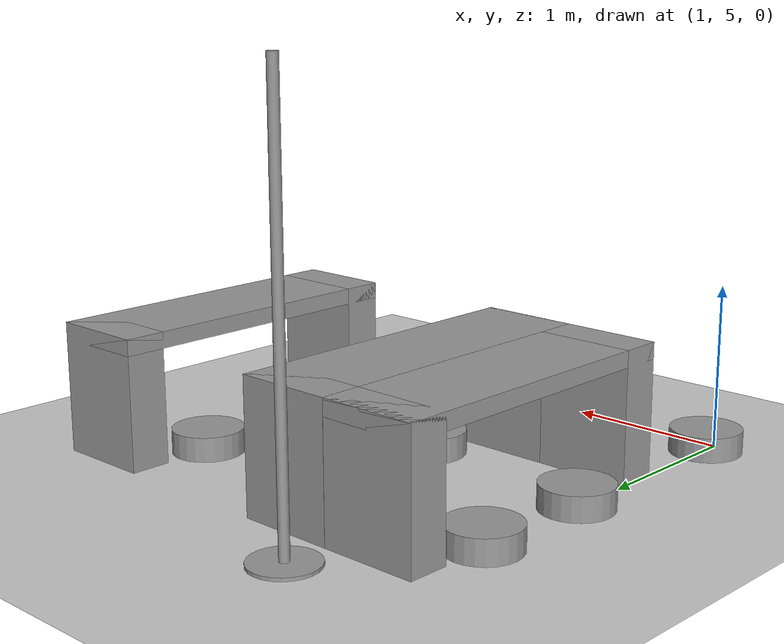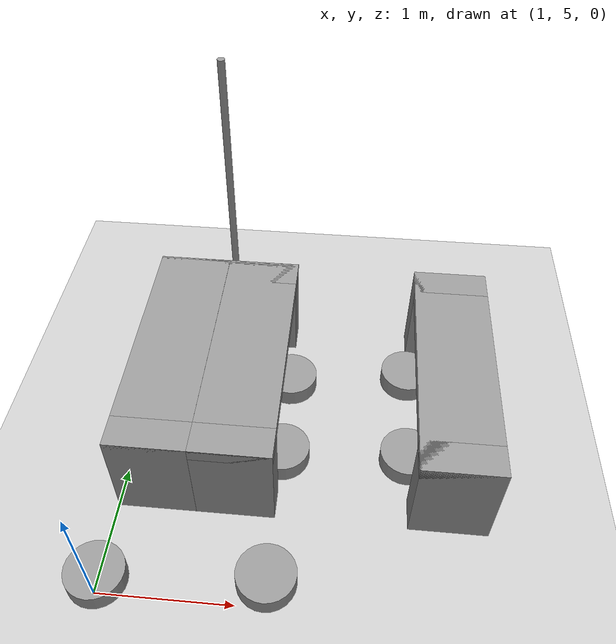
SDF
<sdf version="1.6">
 <world name="default">
  <model name="ground_plane">
   <pose>6.5 0 0 0 -0 0</pose>
   <static>1</static>
   <link name="link">
    <collision name="collision">
     <geometry><plane><normal>0 0 1</normal><size>100 100</size></plane></geometry>
     <surface>
      <contact><collide_bitmask>65535</collide_bitmask></contact>
      <friction><ode><mu>100</mu><mu2>50</mu2></ode></friction>
     </surface>
    </collision>
    <visual name="visual">
     <cast_shadows>0</cast_shadows>
     <geometry><plane><normal>0 0 1</normal><size>100 100</size></plane></geometry>
     <material>
      <script><uri>file://media/materials/scripts/gazebo.material</uri><name>Gazebo/Grey</name></script>
     </material>
    </visual>
   </link>
  </model>
  <model name="Untitled">
   <link name="link_0">
    <inertial>
     <mass>1</mass>
     <inertia><ixx>0.145833</ixx><ixy>0</ixy><ixz>0</ixz><iyy>0.145833</iyy><iyz>0</iyz><izz>0.125</izz></inertia>
    </inertial>
    <visual name="visual">
     <geometry><cylinder><radius>0.22</radius><length>0.15</length></cylinder></geometry>
     <material>
      <lighting>1</lighting>
      <script><uri>file://media/materials/scripts/gazebo.material</uri><name>Gazebo/Grey</name></script>
      <shader type="pixel"><normal_map>__default__</normal_map></shader>
      <ambient>0.3 0.3 0.3 1</ambient>
      <diffuse>0.7 0.7 0.7 1</diffuse>
      <specular>0.01 0.01 0.01 1</specular>
      <emissive>0 0 0 1</emissive>
     </material>
    </visual>
    <collision name="collision">
     <geometry><cylinder><radius>0.22</radius><length>0.15</length></cylinder></geometry>
     <surface>
      <friction>
       <ode><mu>1</mu><mu2>1</mu2><fdir1>0 0 0</fdir1><slip1>0</slip1><slip2>0</slip2></ode>
       <torsional>
        <coefficient>1</coefficient>
        <patch_radius>0</patch_radius>
        <surface_radius>0</surface_radius>
        <use_patch_radius>1</use_patch_radius>
        <ode><slip>0</slip></ode>
       </torsional>
      </friction>
      <bounce><restitution_coefficient>0</restitution_coefficient><threshold>1e+06</threshold></bounce>
      <contact>
       <collide_without_contact>0</collide_without_contact>
       <collide_without_contact_bitmask>1</collide_without_contact_bitmask>
       <collide_bitmask>1</collide_bitmask>
       <ode>
        <soft_cfm>0</soft_cfm>
        <soft_erp>0.2</soft_erp>
        <kp>1e+13</kp>
        <kd>1</kd>
        <max_vel>0.01</max_vel>
        <min_depth>0</min_depth>
       </ode>
       <bullet>
        <split_impulse>1</split_impulse>
        <split_impulse_penetration_threshold>-0.01</split_impulse_penetration_threshold>
        <soft_cfm>0</soft_cfm>
        <soft_erp>0.2</soft_erp>
        <kp>1e+13</kp>
        <kd>1</kd>
       </bullet>
      </contact>
     </surface>
    </collision>
   </link>
   <static>0</static>
   <pose>3.2 7.14234 0.074993 1e-06 1e-06 0</pose>
  </model>
  <model name="Untitled_0">
   <link name="link_0">
    <inertial>
     <mass>1</mass>
     <inertia><ixx>0.145833</ixx><ixy>0</ixy><ixz>0</ixz><iyy>0.145833</iyy><iyz>0</iyz><izz>0.125</izz></inertia>
    </inertial>
    <visual name="visual">
     <geometry><cylinder><radius>0.22</radius><length>0.15</length></cylinder></geometry>
     <material>
      <lighting>1</lighting>
      <script><uri>file://media/materials/scripts/gazebo.material</uri><name>Gazebo/Grey</name></script>
      <shader type="pixel"><normal_map>__default__</normal_map></shader>
      <ambient>0.3 0.3 0.3 1</ambient>
      <diffuse>0.7 0.7 0.7 1</diffuse>
      <specular>0.01 0.01 0.01 1</specular>
      <emissive>0 0 0 1</emissive>
     </material>
    </visual>
    <collision name="collision">
     <geometry><cylinder><radius>0.22</radius><length>0.15</length></cylinder></geometry>
     <surface>
      <friction>
       <ode><mu>1</mu><mu2>1</mu2><fdir1>0 0 0</fdir1><slip1>0</slip1><slip2>0</slip2></ode>
       <torsional>
        <coefficient>1</coefficient>
        <patch_radius>0</patch_radius>
        <surface_radius>0</surface_radius>
        <use_patch_radius>1</use_patch_radius>
        <ode><slip>0</slip></ode>
       </torsional>
      </friction>
      <bounce><restitution_coefficient>0</restitution_coefficient><threshold>1e+06</threshold></bounce>
      <contact>
       <collide_without_contact>0</collide_without_contact>
       <collide_without_contact_bitmask>1</collide_without_contact_bitmask>
       <collide_bitmask>1</collide_bitmask>
       <ode>
        <soft_cfm>0</soft_cfm>
        <soft_erp>0.2</soft_erp>
        <kp>1e+13</kp>
        <kd>1</kd>
        <max_vel>0.01</max_vel>
        <min_depth>0</min_depth>
       </ode>
       <bullet>
        <split_impulse>1</split_impulse>
        <split_impulse_penetration_threshold>-0.01</split_impulse_penetration_threshold>
        <soft_cfm>0</soft_cfm>
        <soft_erp>0.2</soft_erp>
        <kp>1e+13</kp>
        <kd>1</kd>
       </bullet>
      </contact>
     </surface>
    </collision>
   </link>
   <static>0</static>
   <pose>3.2 6.3 0.074999 0 -0 0</pose>
  </model>
  <model name="Untitled_1">
   <link name="link_0">
    <inertial>
     <mass>1</mass>
     <inertia><ixx>0.145833</ixx><ixy>0</ixy><ixz>0</ixz><iyy>0.145833</iyy><iyz>0</iyz><izz>0.125</izz></inertia>
    </inertial>
    <visual name="visual">
     <geometry><cylinder><radius>0.22</radius><length>0.15</length></cylinder></geometry>
     <material>
      <lighting>1</lighting>
      <script><uri>file://media/materials/scripts/gazebo.material</uri><name>Gazebo/Grey</name></script>
      <shader type="pixel"><normal_map>__default__</normal_map></shader>
      <ambient>0.3 0.3 0.3 1</ambient>
      <diffuse>0.7 0.7 0.7 1</diffuse>
      <specular>0.01 0.01 0.01 1</specular>
      <emissive>0 0 0 1</emissive>
     </material>
    </visual>
    <collision name="collision">
     <geometry><cylinder><radius>0.22</radius><length>0.15</length></cylinder></geometry>
     <surface>
      <friction>
       <ode><mu>1</mu><mu2>1</mu2><fdir1>0 0 0</fdir1><slip1>0</slip1><slip2>0</slip2></ode>
       <torsional>
        <coefficient>1</coefficient>
        <patch_radius>0</patch_radius>
        <surface_radius>0</surface_radius>
        <use_patch_radius>1</use_patch_radius>
        <ode><slip>0</slip></ode>
       </torsional>
      </friction>
      <bounce><restitution_coefficient>0</restitution_coefficient><threshold>1e+06</threshold></bounce>
      <contact>
       <collide_without_contact>0</collide_without_contact>
       <collide_without_contact_bitmask>1</collide_without_contact_bitmask>
       <collide_bitmask>1</collide_bitmask>
       <ode>
        <soft_cfm>0</soft_cfm>
        <soft_erp>0.2</soft_erp>
        <kp>1e+13</kp>
        <kd>1</kd>
        <max_vel>0.01</max_vel>
        <min_depth>0</min_depth>
       </ode>
       <bullet>
        <split_impulse>1</split_impulse>
        <split_impulse_penetration_threshold>-0.01</split_impulse_penetration_threshold>
        <soft_cfm>0</soft_cfm>
        <soft_erp>0.2</soft_erp>
        <kp>1e+13</kp>
        <kd>1</kd>
       </bullet>
      </contact>
     </surface>
    </collision>
   </link>
   <static>0</static>
   <pose>2.2 6.25385 0.074997 -1e-06 -1e-06 0</pose>
  </model>
  <model name="Untitled_2">
   <link name="link_0">
    <inertial>
     <mass>1</mass>
     <inertia><ixx>0.145833</ixx><ixy>0</ixy><ixz>0</ixz><iyy>0.145833</iyy><iyz>0</iyz><izz>0.125</izz></inertia>
    </inertial>
    <visual name="visual">
     <geometry><cylinder><radius>0.22</radius><length>0.15</length></cylinder></geometry>
     <material>
      <lighting>1</lighting>
      <script><uri>file://media/materials/scripts/gazebo.material</uri><name>Gazebo/Grey</name></script>
      <shader type="pixel"><normal_map>__default__</normal_map></shader>
      <ambient>0.3 0.3 0.3 1</ambient>
      <diffuse>0.7 0.7 0.7 1</diffuse>
      <specular>0.01 0.01 0.01 1</specular>
      <emissive>0 0 0 1</emissive>
     </material>
    </visual>
    <collision name="collision">
     <geometry><cylinder><radius>0.22</radius><length>0.15</length></cylinder></geometry>
     <surface>
      <friction>
       <ode><mu>1</mu><mu2>1</mu2><fdir1>0 0 0</fdir1><slip1>0</slip1><slip2>0</slip2></ode>
       <torsional>
        <coefficient>1</coefficient>
        <patch_radius>0</patch_radius>
        <surface_radius>0</surface_radius>
        <use_patch_radius>1</use_patch_radius>
        <ode><slip>0</slip></ode>
       </torsional>
      </friction>
      <bounce><restitution_coefficient>0</restitution_coefficient><threshold>1e+06</threshold></bounce>
      <contact>
       <collide_without_contact>0</collide_without_contact>
       <collide_without_contact_bitmask>1</collide_without_contact_bitmask>
       <collide_bitmask>1</collide_bitmask>
       <ode>
        <soft_cfm>0</soft_cfm>
        <soft_erp>0.2</soft_erp>
        <kp>1e+13</kp>
        <kd>1</kd>
        <max_vel>0.01</max_vel>
        <min_depth>0</min_depth>
       </ode>
       <bullet>
        <split_impulse>1</split_impulse>
        <split_impulse_penetration_threshold>-0.01</split_impulse_penetration_threshold>
        <soft_cfm>0</soft_cfm>
        <soft_erp>0.2</soft_erp>
        <kp>1e+13</kp>
        <kd>1</kd>
       </bullet>
      </contact>
     </surface>
    </collision>
   </link>
   <static>0</static>
   <pose>2.2 7.01261 0.074999 0 -0 0</pose>
  </model>
  <model name="Untitled_3">
   <link name="link_0">
    <inertial>
     <mass>1</mass>
     <inertia><ixx>0.145833</ixx><ixy>0</ixy><ixz>0</ixz><iyy>0.145833</iyy><iyz>0</iyz><izz>0.125</izz></inertia>
    </inertial>
    <visual name="visual">
     <geometry><cylinder><radius>0.22</radius><length>0.15</length></cylinder></geometry>
     <material>
      <lighting>1</lighting>
      <script><uri>file://media/materials/scripts/gazebo.material</uri><name>Gazebo/Grey</name></script>
      <shader type="pixel"><normal_map>__default__</normal_map></shader>
      <ambient>0.3 0.3 0.3 1</ambient>
      <diffuse>0.7 0.7 0.7 1</diffuse>
      <specular>0.01 0.01 0.01 1</specular>
      <emissive>0 0 0 1</emissive>
     </material>
    </visual>
    <collision name="collision">
     <geometry><cylinder><radius>0.22</radius><length>0.15</length></cylinder></geometry>
     <surface>
      <friction>
       <ode><mu>1</mu><mu2>1</mu2><fdir1>0 0 0</fdir1><slip1>0</slip1><slip2>0</slip2></ode>
       <torsional>
        <coefficient>1</coefficient>
        <patch_radius>0</patch_radius>
        <surface_radius>0</surface_radius>
        <use_patch_radius>1</use_patch_radius>
        <ode><slip>0</slip></ode>
       </torsional>
      </friction>
      <bounce><restitution_coefficient>0</restitution_coefficient><threshold>1e+06</threshold></bounce>
      <contact>
       <collide_without_contact>0</collide_without_contact>
       <collide_without_contact_bitmask>1</collide_without_contact_bitmask>
       <collide_bitmask>1</collide_bitmask>
       <ode>
        <soft_cfm>0</soft_cfm>
        <soft_erp>0.2</soft_erp>
        <kp>1e+13</kp>
        <kd>1</kd>
        <max_vel>0.01</max_vel>
        <min_depth>0</min_depth>
       </ode>
       <bullet>
        <split_impulse>1</split_impulse>
        <split_impulse_penetration_threshold>-0.01</split_impulse_penetration_threshold>
        <soft_cfm>0</soft_cfm>
        <soft_erp>0.2</soft_erp>
        <kp>1e+13</kp>
        <kd>1</kd>
       </bullet>
      </contact>
     </surface>
    </collision>
   </link>
   <static>0</static>
   <pose>1 7.16489 0.074999 0 -0 0</pose>
  </model>
  <model name="Untitled_4">
   <link name="link_0">
    <inertial>
     <mass>1</mass>
     <inertia><ixx>0.145833</ixx><ixy>0</ixy><ixz>0</ixz><iyy>0.145833</iyy><iyz>0</iyz><izz>0.125</izz></inertia>
    </inertial>
    <visual name="visual">
     <geometry><cylinder><radius>0.22</radius><length>0.15</length></cylinder></geometry>
     <material>
      <lighting>1</lighting>
      <script><uri>file://media/materials/scripts/gazebo.material</uri><name>Gazebo/Grey</name></script>
      <shader type="pixel"><normal_map>__default__</normal_map></shader>
      <ambient>0.3 0.3 0.3 1</ambient>
      <diffuse>0.7 0.7 0.7 1</diffuse>
      <specular>0.01 0.01 0.01 1</specular>
      <emissive>0 0 0 1</emissive>
     </material>
    </visual>
    <collision name="collision">
     <geometry><cylinder><radius>0.22</radius><length>0.15</length></cylinder></geometry>
     <surface>
      <friction>
       <ode><mu>1</mu><mu2>1</mu2><fdir1>0 0 0</fdir1><slip1>0</slip1><slip2>0</slip2></ode>
       <torsional>
        <coefficient>1</coefficient>
        <patch_radius>0</patch_radius>
        <surface_radius>0</surface_radius>
        <use_patch_radius>1</use_patch_radius>
        <ode><slip>0</slip></ode>
       </torsional>
      </friction>
      <bounce><restitution_coefficient>0</restitution_coefficient><threshold>1e+06</threshold></bounce>
      <contact>
       <collide_without_contact>0</collide_without_contact>
       <collide_without_contact_bitmask>1</collide_without_contact_bitmask>
       <collide_bitmask>1</collide_bitmask>
       <ode>
        <soft_cfm>0</soft_cfm>
        <soft_erp>0.2</soft_erp>
        <kp>1e+13</kp>
        <kd>1</kd>
        <max_vel>0.01</max_vel>
        <min_depth>0</min_depth>
       </ode>
       <bullet>
        <split_impulse>1</split_impulse>
        <split_impulse_penetration_threshold>-0.01</split_impulse_penetration_threshold>
        <soft_cfm>0</soft_cfm>
        <soft_erp>0.2</soft_erp>
        <kp>1e+13</kp>
        <kd>1</kd>
       </bullet>
      </contact>
     </surface>
    </collision>
   </link>
   <static>0</static>
   <pose>1 6.38689 0.074993 1e-06 1e-06 0</pose>
  </model>
  <model name="Untitled_5">
   <link name="link_0">
    <inertial>
     <mass>1</mass>
     <inertia><ixx>0.145833</ixx><ixy>0</ixy><ixz>0</ixz><iyy>0.145833</iyy><iyz>0</iyz><izz>0.125</izz></inertia>
    </inertial>
    <visual name="visual">
     <geometry><cylinder><radius>0.22</radius><length>0.15</length></cylinder></geometry>
     <material>
      <lighting>1</lighting>
      <script><uri>file://media/materials/scripts/gazebo.material</uri><name>Gazebo/Grey</name></script>
      <shader type="pixel"><normal_map>__default__</normal_map></shader>
      <ambient>0.3 0.3 0.3 1</ambient>
      <diffuse>0.7 0.7 0.7 1</diffuse>
      <specular>0.01 0.01 0.01 1</specular>
      <emissive>0 0 0 1</emissive>
     </material>
    </visual>
    <collision name="collision">
     <geometry><cylinder><radius>0.22</radius><length>0.15</length></cylinder></geometry>
     <surface>
      <friction>
       <ode><mu>1</mu><mu2>1</mu2><fdir1>0 0 0</fdir1><slip1>0</slip1><slip2>0</slip2></ode>
       <torsional>
        <coefficient>1</coefficient>
        <patch_radius>0</patch_radius>
        <surface_radius>0</surface_radius>
        <use_patch_radius>1</use_patch_radius>
        <ode><slip>0</slip></ode>
       </torsional>
      </friction>
      <bounce><restitution_coefficient>0</restitution_coefficient><threshold>1e+06</threshold></bounce>
      <contact>
       <collide_without_contact>0</collide_without_contact>
       <collide_without_contact_bitmask>1</collide_without_contact_bitmask>
       <collide_bitmask>1</collide_bitmask>
       <ode>
        <soft_cfm>0</soft_cfm>
        <soft_erp>0.2</soft_erp>
        <kp>1e+13</kp>
        <kd>1</kd>
        <max_vel>0.01</max_vel>
        <min_depth>0</min_depth>
       </ode>
       <bullet>
        <split_impulse>1</split_impulse>
        <split_impulse_penetration_threshold>-0.01</split_impulse_penetration_threshold>
        <soft_cfm>0</soft_cfm>
        <soft_erp>0.2</soft_erp>
        <kp>1e+13</kp>
        <kd>1</kd>
       </bullet>
      </contact>
     </surface>
    </collision>
   </link>
   <static>0</static>
   <pose>1 5.10463 0.074993 1e-06 1e-06 0</pose>
  </model>
  <model name="Untitled_8">
   <link name="link_0">
    <inertial>
     <mass>1</mass>
     <inertia><ixx>0.145833</ixx><ixy>0</ixy><ixz>0</ixz><iyy>0.145833</iyy><iyz>0</iyz><izz>0.125</izz></inertia>
    </inertial>
    <visual name="visual">
     <geometry><cylinder><radius>0.22</radius><length>0.15</length></cylinder></geometry>
     <material>
      <lighting>1</lighting>
      <script><uri>file://media/materials/scripts/gazebo.material</uri><name>Gazebo/Grey</name></script>
      <shader type="pixel"><normal_map>__default__</normal_map></shader>
      <ambient>0.3 0.3 0.3 1</ambient>
      <diffuse>0.7 0.7 0.7 1</diffuse>
      <specular>0.01 0.01 0.01 1</specular>
      <emissive>0 0 0 1</emissive>
     </material>
    </visual>
    <collision name="collision">
     <geometry><cylinder><radius>0.22</radius><length>0.15</length></cylinder></geometry>
     <surface>
      <friction>
       <ode><mu>1</mu><mu2>1</mu2><fdir1>0 0 0</fdir1><slip1>0</slip1><slip2>0</slip2></ode>
       <torsional>
        <coefficient>1</coefficient>
        <patch_radius>0</patch_radius>
        <surface_radius>0</surface_radius>
        <use_patch_radius>1</use_patch_radius>
        <ode><slip>0</slip></ode>
       </torsional>
      </friction>
      <bounce><restitution_coefficient>0</restitution_coefficient><threshold>1e+06</threshold></bounce>
      <contact>
       <collide_without_contact>0</collide_without_contact>
       <collide_without_contact_bitmask>1</collide_without_contact_bitmask>
       <collide_bitmask>1</collide_bitmask>
       <ode>
        <soft_cfm>0</soft_cfm>
        <soft_erp>0.2</soft_erp>
        <kp>1e+13</kp>
        <kd>1</kd>
        <max_vel>0.01</max_vel>
        <min_depth>0</min_depth>
       </ode>
       <bullet>
        <split_impulse>1</split_impulse>
        <split_impulse_penetration_threshold>-0.01</split_impulse_penetration_threshold>
        <soft_cfm>0</soft_cfm>
        <soft_erp>0.2</soft_erp>
        <kp>1e+13</kp>
        <kd>1</kd>
       </bullet>
      </contact>
     </surface>
    </collision>
   </link>
   <static>0</static>
   <pose>2.2 5.19261 0.074993 1e-06 1e-06 0</pose>
  </model>
  <model name="Table_SF_0">
   <link name="link_0">
    <pose>-0 -0.875 -0.116667 0 -0 0</pose>
    <inertial>
     <mass>1</mass>
     <inertia>
      <ixx>0.166667</ixx>
      <ixy>0</ixy>
      <ixz>0</ixz>
      <iyy>0.166667</iyy>
      <iyz>0</iyz>
      <izz>0.166667</izz>
     </inertia>
    </inertial>
    <visual name="visual">
     <geometry><box><size>0.6 0.25 0.8</size></box></geometry>
     <material>
      <lighting>1</lighting>
      <script><uri>file://media/materials/scripts/gazebo.material</uri><name>Gazebo/Grey</name></script>
      <shader type="pixel"><normal_map>__default__</normal_map></shader>
      <ambient>0.3 0.3 0.3 1</ambient>
      <diffuse>0.7 0.7 0.7 1</diffuse>
      <specular>0.01 0.01 0.01 1</specular>
      <emissive>0 0 0 1</emissive>
     </material>
    </visual>
    <collision name="collision">
     <geometry><box><size>0.6 0.25 0.8</size></box></geometry>
     <surface>
      <friction>
       <ode><mu>1</mu><mu2>1</mu2><fdir1>0 0 0</fdir1><slip1>0</slip1><slip2>0</slip2></ode>
       <torsional>
        <coefficient>1</coefficient>
        <patch_radius>0</patch_radius>
        <surface_radius>0</surface_radius>
        <use_patch_radius>1</use_patch_radius>
        <ode><slip>0</slip></ode>
       </torsional>
      </friction>
      <bounce><restitution_coefficient>0</restitution_coefficient><threshold>1e+06</threshold></bounce>
      <contact>
       <collide_without_contact>0</collide_without_contact>
       <collide_without_contact_bitmask>1</collide_without_contact_bitmask>
       <collide_bitmask>1</collide_bitmask>
       <ode>
        <soft_cfm>0</soft_cfm>
        <soft_erp>0.2</soft_erp>
        <kp>1e+13</kp>
        <kd>1</kd>
        <max_vel>0.01</max_vel>
        <min_depth>0</min_depth>
       </ode>
       <bullet>
        <split_impulse>1</split_impulse>
        <split_impulse_penetration_threshold>-0.01</split_impulse_penetration_threshold>
        <soft_cfm>0</soft_cfm>
        <soft_erp>0.2</soft_erp>
        <kp>1e+13</kp>
        <kd>1</kd>
       </bullet>
      </contact>
     </surface>
    </collision>
   </link>
   <link name="link_0_clone">
    <pose>0 0.875 -0.116667 0 -0 0</pose>
    <inertial>
     <mass>1</mass>
     <inertia>
      <ixx>0.166667</ixx>
      <ixy>0</ixy>
      <ixz>0</ixz>
      <iyy>0.166667</iyy>
      <iyz>0</iyz>
      <izz>0.166667</izz>
     </inertia>
    </inertial>
    <visual name="visual">
     <geometry><box><size>0.6 0.25 0.8</size></box></geometry>
     <material>
      <lighting>1</lighting>
      <script><uri>file://media/materials/scripts/gazebo.material</uri><name>Gazebo/Grey</name></script>
      <shader type="pixel"><normal_map>__default__</normal_map></shader>
      <ambient>0.3 0.3 0.3 1</ambient>
      <diffuse>0.7 0.7 0.7 1</diffuse>
      <specular>0.01 0.01 0.01 1</specular>
      <emissive>0 0 0 1</emissive>
     </material>
    </visual>
    <collision name="collision">
     <geometry><box><size>0.6 0.25 0.8</size></box></geometry>
     <surface>
      <friction>
       <ode><mu>1</mu><mu2>1</mu2><fdir1>0 0 0</fdir1><slip1>0</slip1><slip2>0</slip2></ode>
       <torsional>
        <coefficient>1</coefficient>
        <patch_radius>0</patch_radius>
        <surface_radius>0</surface_radius>
        <use_patch_radius>1</use_patch_radius>
        <ode><slip>0</slip></ode>
       </torsional>
      </friction>
      <bounce><restitution_coefficient>0</restitution_coefficient><threshold>1e+06</threshold></bounce>
      <contact>
       <collide_without_contact>0</collide_without_contact>
       <collide_without_contact_bitmask>1</collide_without_contact_bitmask>
       <collide_bitmask>1</collide_bitmask>
       <ode>
        <soft_cfm>0</soft_cfm>
        <soft_erp>0.2</soft_erp>
        <kp>1e+13</kp>
        <kd>1</kd>
        <max_vel>0.01</max_vel>
        <min_depth>0</min_depth>
       </ode>
       <bullet>
        <split_impulse>1</split_impulse>
        <split_impulse_penetration_threshold>-0.01</split_impulse_penetration_threshold>
        <soft_cfm>0</soft_cfm>
        <soft_erp>0.2</soft_erp>
        <kp>1e+13</kp>
        <kd>1</kd>
       </bullet>
      </contact>
     </surface>
    </collision>
   </link>
   <link name="link_1">
    <pose>-0 0 0.233333 0 -0 0</pose>
    <inertial>
     <mass>1</mass>
     <inertia>
      <ixx>0.166667</ixx>
      <ixy>0</ixy>
      <ixz>0</ixz>
      <iyy>0.166667</iyy>
      <iyz>0</iyz>
      <izz>0.166667</izz>
     </inertia>
    </inertial>
    <visual name="visual">
     <geometry><box><size>0.6 2 0.1</size></box></geometry>
     <material>
      <lighting>1</lighting>
      <script><uri>file://media/materials/scripts/gazebo.material</uri><name>Gazebo/Grey</name></script>
      <shader type="pixel"><normal_map>__default__</normal_map></shader>
      <ambient>0.3 0.3 0.3 1</ambient>
      <diffuse>0.7 0.7 0.7 1</diffuse>
      <specular>0.01 0.01 0.01 1</specular>
      <emissive>0 0 0 1</emissive>
     </material>
    </visual>
    <collision name="collision">
     <geometry><box><size>0.6 2 0.1</size></box></geometry>
     <surface>
      <friction>
       <ode><mu>1</mu><mu2>1</mu2><fdir1>0 0 0</fdir1><slip1>0</slip1><slip2>0</slip2></ode>
       <torsional>
        <coefficient>1</coefficient>
        <patch_radius>0</patch_radius>
        <surface_radius>0</surface_radius>
        <use_patch_radius>1</use_patch_radius>
        <ode><slip>0</slip></ode>
       </torsional>
      </friction>
      <bounce><restitution_coefficient>0</restitution_coefficient><threshold>1e+06</threshold></bounce>
      <contact>
       <collide_without_contact>0</collide_without_contact>
       <collide_without_contact_bitmask>1</collide_without_contact_bitmask>
       <collide_bitmask>1</collide_bitmask>
       <ode>
        <soft_cfm>0</soft_cfm>
        <soft_erp>0.2</soft_erp>
        <kp>1e+13</kp>
        <kd>1</kd>
        <max_vel>0.01</max_vel>
        <min_depth>0</min_depth>
       </ode>
       <bullet>
        <split_impulse>1</split_impulse>
        <split_impulse_penetration_threshold>-0.01</split_impulse_penetration_threshold>
        <soft_cfm>0</soft_cfm>
        <soft_erp>0.2</soft_erp>
        <kp>1e+13</kp>
        <kd>1</kd>
       </bullet>
      </contact>
     </surface>
    </collision>
   </link>
   <joint name="link_0_JOINT_0" type="fixed">
    <parent>link_0</parent>
    <child>link_1</child>
    <physics>
     <ode><limit><cfm>0</cfm><erp>0.2</erp></limit><suspension><cfm>0</cfm><erp>0.2</erp></suspension></ode>
    </physics>
   </joint>
   <joint name="link_0_clone_JOINT_1" type="fixed">
    <parent>link_0_clone</parent>
    <child>link_1</child>
    <physics>
     <ode><limit><cfm>0</cfm><erp>0.2</erp></limit><suspension><cfm>0</cfm><erp>0.2</erp></suspension></ode>
    </physics>
   </joint>
   <static>1</static>
   <pose>1.29995 6.70007 0.516667 0 -0 0.000385</pose>
  </model>
  <model name="Table_SF_clone_clone">
   <link name="link_0">
    <pose>0 -0.875 -0.116667 0 -0 0</pose>
    <inertial>
     <mass>1</mass>
     <inertia>
      <ixx>0.166667</ixx>
      <ixy>0</ixy>
      <ixz>0</ixz>
      <iyy>0.166667</iyy>
      <iyz>0</iyz>
      <izz>0.166667</izz>
     </inertia>
    </inertial>
    <visual name="visual">
     <geometry><box><size>0.6 0.25 0.8</size></box></geometry>
     <material>
      <lighting>1</lighting>
      <script><uri>file://media/materials/scripts/gazebo.material</uri><name>Gazebo/Grey</name></script>
      <shader type="pixel"><normal_map>__default__</normal_map></shader>
      <ambient>0.3 0.3 0.3 1</ambient>
      <diffuse>0.7 0.7 0.7 1</diffuse>
      <specular>0.01 0.01 0.01 1</specular>
      <emissive>0 0 0 1</emissive>
     </material>
    </visual>
    <collision name="collision">
     <geometry><box><size>0.6 0.25 0.8</size></box></geometry>
     <surface>
      <friction>
       <ode><mu>1</mu><mu2>1</mu2><fdir1>0 0 0</fdir1><slip1>0</slip1><slip2>0</slip2></ode>
       <torsional>
        <coefficient>1</coefficient>
        <patch_radius>0</patch_radius>
        <surface_radius>0</surface_radius>
        <use_patch_radius>1</use_patch_radius>
        <ode><slip>0</slip></ode>
       </torsional>
      </friction>
      <bounce><restitution_coefficient>0</restitution_coefficient><threshold>1e+06</threshold></bounce>
      <contact>
       <collide_without_contact>0</collide_without_contact>
       <collide_without_contact_bitmask>1</collide_without_contact_bitmask>
       <collide_bitmask>1</collide_bitmask>
       <ode>
        <soft_cfm>0</soft_cfm>
        <soft_erp>0.2</soft_erp>
        <kp>1e+13</kp>
        <kd>1</kd>
        <max_vel>0.01</max_vel>
        <min_depth>0</min_depth>
       </ode>
       <bullet>
        <split_impulse>1</split_impulse>
        <split_impulse_penetration_threshold>-0.01</split_impulse_penetration_threshold>
        <soft_cfm>0</soft_cfm>
        <soft_erp>0.2</soft_erp>
        <kp>1e+13</kp>
        <kd>1</kd>
       </bullet>
      </contact>
     </surface>
    </collision>
   </link>
   <link name="link_0_clone">
    <pose>-0 0.875 -0.116667 0 -0 0</pose>
    <inertial>
     <mass>1</mass>
     <inertia>
      <ixx>0.166667</ixx>
      <ixy>0</ixy>
      <ixz>0</ixz>
      <iyy>0.166667</iyy>
      <iyz>0</iyz>
      <izz>0.166667</izz>
     </inertia>
    </inertial>
    <visual name="visual">
     <geometry><box><size>0.6 0.25 0.8</size></box></geometry>
     <material>
      <lighting>1</lighting>
      <script><uri>file://media/materials/scripts/gazebo.material</uri><name>Gazebo/Grey</name></script>
      <shader type="pixel"><normal_map>__default__</normal_map></shader>
      <ambient>0.3 0.3 0.3 1</ambient>
      <diffuse>0.7 0.7 0.7 1</diffuse>
      <specular>0.01 0.01 0.01 1</specular>
      <emissive>0 0 0 1</emissive>
     </material>
    </visual>
    <collision name="collision">
     <geometry><box><size>0.6 0.25 0.8</size></box></geometry>
     <surface>
      <friction>
       <ode><mu>1</mu><mu2>1</mu2><fdir1>0 0 0</fdir1><slip1>0</slip1><slip2>0</slip2></ode>
       <torsional>
        <coefficient>1</coefficient>
        <patch_radius>0</patch_radius>
        <surface_radius>0</surface_radius>
        <use_patch_radius>1</use_patch_radius>
        <ode><slip>0</slip></ode>
       </torsional>
      </friction>
      <bounce><restitution_coefficient>0</restitution_coefficient><threshold>1e+06</threshold></bounce>
      <contact>
       <collide_without_contact>0</collide_without_contact>
       <collide_without_contact_bitmask>1</collide_without_contact_bitmask>
       <collide_bitmask>1</collide_bitmask>
       <ode>
        <soft_cfm>0</soft_cfm>
        <soft_erp>0.2</soft_erp>
        <kp>1e+13</kp>
        <kd>1</kd>
        <max_vel>0.01</max_vel>
        <min_depth>0</min_depth>
       </ode>
       <bullet>
        <split_impulse>1</split_impulse>
        <split_impulse_penetration_threshold>-0.01</split_impulse_penetration_threshold>
        <soft_cfm>0</soft_cfm>
        <soft_erp>0.2</soft_erp>
        <kp>1e+13</kp>
        <kd>1</kd>
       </bullet>
      </contact>
     </surface>
    </collision>
   </link>
   <link name="link_1">
    <pose>-0 0 0.233333 0 -0 0</pose>
    <inertial>
     <mass>1</mass>
     <inertia>
      <ixx>0.166667</ixx>
      <ixy>0</ixy>
      <ixz>0</ixz>
      <iyy>0.166667</iyy>
      <iyz>0</iyz>
      <izz>0.166667</izz>
     </inertia>
    </inertial>
    <visual name="visual">
     <geometry><box><size>0.6 2 0.1</size></box></geometry>
     <material>
      <lighting>1</lighting>
      <script><uri>file://media/materials/scripts/gazebo.material</uri><name>Gazebo/Grey</name></script>
      <shader type="pixel"><normal_map>__default__</normal_map></shader>
      <ambient>0.3 0.3 0.3 1</ambient>
      <diffuse>0.7 0.7 0.7 1</diffuse>
      <specular>0.01 0.01 0.01 1</specular>
      <emissive>0 0 0 1</emissive>
     </material>
    </visual>
    <collision name="collision">
     <geometry><box><size>0.6 2 0.1</size></box></geometry>
     <surface>
      <friction>
       <ode><mu>1</mu><mu2>1</mu2><fdir1>0 0 0</fdir1><slip1>0</slip1><slip2>0</slip2></ode>
       <torsional>
        <coefficient>1</coefficient>
        <patch_radius>0</patch_radius>
        <surface_radius>0</surface_radius>
        <use_patch_radius>1</use_patch_radius>
        <ode><slip>0</slip></ode>
       </torsional>
      </friction>
      <bounce><restitution_coefficient>0</restitution_coefficient><threshold>1e+06</threshold></bounce>
      <contact>
       <collide_without_contact>0</collide_without_contact>
       <collide_without_contact_bitmask>1</collide_without_contact_bitmask>
       <collide_bitmask>1</collide_bitmask>
       <ode>
        <soft_cfm>0</soft_cfm>
        <soft_erp>0.2</soft_erp>
        <kp>1e+13</kp>
        <kd>1</kd>
        <max_vel>0.01</max_vel>
        <min_depth>0</min_depth>
       </ode>
       <bullet>
        <split_impulse>1</split_impulse>
        <split_impulse_penetration_threshold>-0.01</split_impulse_penetration_threshold>
        <soft_cfm>0</soft_cfm>
        <soft_erp>0.2</soft_erp>
        <kp>1e+13</kp>
        <kd>1</kd>
       </bullet>
      </contact>
     </surface>
    </collision>
   </link>
   <joint name="link_0_JOINT_0" type="fixed">
    <parent>link_0</parent>
    <child>link_1</child>
    <physics>
     <ode><limit><cfm>0</cfm><erp>0.2</erp></limit><suspension><cfm>0</cfm><erp>0.2</erp></suspension></ode>
    </physics>
   </joint>
   <joint name="link_0_clone_JOINT_1" type="fixed">
    <parent>link_0_clone</parent>
    <child>link_1</child>
    <physics>
     <ode><limit><cfm>0</cfm><erp>0.2</erp></limit><suspension><cfm>0</cfm><erp>0.2</erp></suspension></ode>
    </physics>
   </joint>
   <static>1</static>
   <pose>1.90035 6.70024 0.516667 0 0 -1.1e-05</pose>
  </model>
  <model name="Table_SF_clone_clone_clone">
   <link name="link_0">
    <pose>0 -0.875 -0.116667 0 -0 0</pose>
    <inertial>
     <mass>1</mass>
     <inertia>
      <ixx>0.166667</ixx>
      <ixy>0</ixy>
      <ixz>0</ixz>
      <iyy>0.166667</iyy>
      <iyz>0</iyz>
      <izz>0.166667</izz>
     </inertia>
    </inertial>
    <visual name="visual">
     <geometry><box><size>0.6 0.25 0.8</size></box></geometry>
     <material>
      <lighting>1</lighting>
      <script><uri>file://media/materials/scripts/gazebo.material</uri><name>Gazebo/Grey</name></script>
      <shader type="pixel"><normal_map>__default__</normal_map></shader>
      <ambient>0.3 0.3 0.3 1</ambient>
      <diffuse>0.7 0.7 0.7 1</diffuse>
      <specular>0.01 0.01 0.01 1</specular>
      <emissive>0 0 0 1</emissive>
     </material>
    </visual>
    <collision name="collision">
     <geometry><box><size>0.6 0.25 0.8</size></box></geometry>
     <surface>
      <friction>
       <ode><mu>1</mu><mu2>1</mu2><fdir1>0 0 0</fdir1><slip1>0</slip1><slip2>0</slip2></ode>
       <torsional>
        <coefficient>1</coefficient>
        <patch_radius>0</patch_radius>
        <surface_radius>0</surface_radius>
        <use_patch_radius>1</use_patch_radius>
        <ode><slip>0</slip></ode>
       </torsional>
      </friction>
      <bounce><restitution_coefficient>0</restitution_coefficient><threshold>1e+06</threshold></bounce>
      <contact>
       <collide_without_contact>0</collide_without_contact>
       <collide_without_contact_bitmask>1</collide_without_contact_bitmask>
       <collide_bitmask>1</collide_bitmask>
       <ode>
        <soft_cfm>0</soft_cfm>
        <soft_erp>0.2</soft_erp>
        <kp>1e+13</kp>
        <kd>1</kd>
        <max_vel>0.01</max_vel>
        <min_depth>0</min_depth>
       </ode>
       <bullet>
        <split_impulse>1</split_impulse>
        <split_impulse_penetration_threshold>-0.01</split_impulse_penetration_threshold>
        <soft_cfm>0</soft_cfm>
        <soft_erp>0.2</soft_erp>
        <kp>1e+13</kp>
        <kd>1</kd>
       </bullet>
      </contact>
     </surface>
    </collision>
   </link>
   <link name="link_0_clone">
    <pose>0 0.875 -0.116667 0 -0 0</pose>
    <inertial>
     <mass>1</mass>
     <inertia>
      <ixx>0.166667</ixx>
      <ixy>0</ixy>
      <ixz>0</ixz>
      <iyy>0.166667</iyy>
      <iyz>0</iyz>
      <izz>0.166667</izz>
     </inertia>
    </inertial>
    <visual name="visual">
     <geometry><box><size>0.6 0.25 0.8</size></box></geometry>
     <material>
      <lighting>1</lighting>
      <script><uri>file://media/materials/scripts/gazebo.material</uri><name>Gazebo/Grey</name></script>
      <shader type="pixel"><normal_map>__default__</normal_map></shader>
      <ambient>0.3 0.3 0.3 1</ambient>
      <diffuse>0.7 0.7 0.7 1</diffuse>
      <specular>0.01 0.01 0.01 1</specular>
      <emissive>0 0 0 1</emissive>
     </material>
    </visual>
    <collision name="collision">
     <geometry><box><size>0.6 0.25 0.8</size></box></geometry>
     <surface>
      <friction>
       <ode><mu>1</mu><mu2>1</mu2><fdir1>0 0 0</fdir1><slip1>0</slip1><slip2>0</slip2></ode>
       <torsional>
        <coefficient>1</coefficient>
        <patch_radius>0</patch_radius>
        <surface_radius>0</surface_radius>
        <use_patch_radius>1</use_patch_radius>
        <ode><slip>0</slip></ode>
       </torsional>
      </friction>
      <bounce><restitution_coefficient>0</restitution_coefficient><threshold>1e+06</threshold></bounce>
      <contact>
       <collide_without_contact>0</collide_without_contact>
       <collide_without_contact_bitmask>1</collide_without_contact_bitmask>
       <collide_bitmask>1</collide_bitmask>
       <ode>
        <soft_cfm>0</soft_cfm>
        <soft_erp>0.2</soft_erp>
        <kp>1e+13</kp>
        <kd>1</kd>
        <max_vel>0.01</max_vel>
        <min_depth>0</min_depth>
       </ode>
       <bullet>
        <split_impulse>1</split_impulse>
        <split_impulse_penetration_threshold>-0.01</split_impulse_penetration_threshold>
        <soft_cfm>0</soft_cfm>
        <soft_erp>0.2</soft_erp>
        <kp>1e+13</kp>
        <kd>1</kd>
       </bullet>
      </contact>
     </surface>
    </collision>
   </link>
   <link name="link_1">
    <pose>0 0 0.233333 0 -0 0</pose>
    <inertial>
     <mass>1</mass>
     <inertia>
      <ixx>0.166667</ixx>
      <ixy>0</ixy>
      <ixz>0</ixz>
      <iyy>0.166667</iyy>
      <iyz>0</iyz>
      <izz>0.166667</izz>
     </inertia>
    </inertial>
    <visual name="visual">
     <geometry><box><size>0.6 2 0.1</size></box></geometry>
     <material>
      <lighting>1</lighting>
      <script><uri>file://media/materials/scripts/gazebo.material</uri><name>Gazebo/Grey</name></script>
      <shader type="pixel"><normal_map>__default__</normal_map></shader>
      <ambient>0.3 0.3 0.3 1</ambient>
      <diffuse>0.7 0.7 0.7 1</diffuse>
      <specular>0.01 0.01 0.01 1</specular>
      <emissive>0 0 0 1</emissive>
     </material>
    </visual>
    <collision name="collision">
     <geometry><box><size>0.6 2 0.1</size></box></geometry>
     <surface>
      <friction>
       <ode><mu>1</mu><mu2>1</mu2><fdir1>0 0 0</fdir1><slip1>0</slip1><slip2>0</slip2></ode>
       <torsional>
        <coefficient>1</coefficient>
        <patch_radius>0</patch_radius>
        <surface_radius>0</surface_radius>
        <use_patch_radius>1</use_patch_radius>
        <ode><slip>0</slip></ode>
       </torsional>
      </friction>
      <bounce><restitution_coefficient>0</restitution_coefficient><threshold>1e+06</threshold></bounce>
      <contact>
       <collide_without_contact>0</collide_without_contact>
       <collide_without_contact_bitmask>1</collide_without_contact_bitmask>
       <collide_bitmask>1</collide_bitmask>
       <ode>
        <soft_cfm>0</soft_cfm>
        <soft_erp>0.2</soft_erp>
        <kp>1e+13</kp>
        <kd>1</kd>
        <max_vel>0.01</max_vel>
        <min_depth>0</min_depth>
       </ode>
       <bullet>
        <split_impulse>1</split_impulse>
        <split_impulse_penetration_threshold>-0.01</split_impulse_penetration_threshold>
        <soft_cfm>0</soft_cfm>
        <soft_erp>0.2</soft_erp>
        <kp>1e+13</kp>
        <kd>1</kd>
       </bullet>
      </contact>
     </surface>
    </collision>
   </link>
   <joint name="link_0_JOINT_0" type="fixed">
    <parent>link_0</parent>
    <child>link_1</child>
    <physics>
     <ode><limit><cfm>0</cfm><erp>0.2</erp></limit><suspension><cfm>0</cfm><erp>0.2</erp></suspension></ode>
    </physics>
   </joint>
   <joint name="link_0_clone_JOINT_1" type="fixed">
    <parent>link_0_clone</parent>
    <child>link_1</child>
    <physics>
     <ode><limit><cfm>0</cfm><erp>0.2</erp></limit><suspension><cfm>0</cfm><erp>0.2</erp></suspension></ode>
    </physics>
   </joint>
   <static>1</static>
   <pose>3.49996 6.69969 0.516668 0 3e-06 -0.00019</pose>
  </model>
  <model name="Pillar_SF">
   <link name="link_0">
    <pose>0 -0 0.01 0 -0 0</pose>
    <inertial>
     <mass>1</mass>
     <inertia><ixx>0.145833</ixx><ixy>0</ixy><ixz>0</ixz><iyy>0.145833</iyy><iyz>0</iyz><izz>0.125</izz></inertia>
    </inertial>
    <visual name="visual">
     <geometry><cylinder><radius>0.2</radius><length>0.02</length></cylinder></geometry>
     <material>
      <lighting>1</lighting>
      <script><uri>file://media/materials/scripts/gazebo.material</uri><name>Gazebo/Grey</name></script>
      <shader type="pixel"><normal_map>__default__</normal_map></shader>
      <ambient>0.3 0.3 0.3 1</ambient>
      <diffuse>0.7 0.7 0.7 1</diffuse>
      <specular>0.01 0.01 0.01 1</specular>
      <emissive>0 0 0 1</emissive>
     </material>
    </visual>
    <collision name="collision">
     <geometry><cylinder><radius>0.2</radius><length>0.02</length></cylinder></geometry>
     <surface>
      <friction>
       <ode><mu>1</mu><mu2>1</mu2><fdir1>0 0 0</fdir1><slip1>0</slip1><slip2>0</slip2></ode>
       <torsional>
        <coefficient>1</coefficient>
        <patch_radius>0</patch_radius>
        <surface_radius>0</surface_radius>
        <use_patch_radius>1</use_patch_radius>
        <ode><slip>0</slip></ode>
       </torsional>
      </friction>
      <bounce><restitution_coefficient>0</restitution_coefficient><threshold>1e+06</threshold></bounce>
      <contact>
       <collide_without_contact>0</collide_without_contact>
       <collide_without_contact_bitmask>1</collide_without_contact_bitmask>
       <collide_bitmask>1</collide_bitmask>
       <ode>
        <soft_cfm>0</soft_cfm>
        <soft_erp>0.2</soft_erp>
        <kp>1e+13</kp>
        <kd>1</kd>
        <max_vel>0.01</max_vel>
        <min_depth>0</min_depth>
       </ode>
       <bullet>
        <split_impulse>1</split_impulse>
        <split_impulse_penetration_threshold>-0.01</split_impulse_penetration_threshold>
        <soft_cfm>0</soft_cfm>
        <soft_erp>0.2</soft_erp>
        <kp>1e+13</kp>
        <kd>1</kd>
       </bullet>
      </contact>
     </surface>
    </collision>
   </link>
   <link name="link_1">
    <pose>0 -0 1.25 0 -0 0</pose>
    <inertial>
     <mass>1</mass>
     <inertia><ixx>0.145833</ixx><ixy>0</ixy><ixz>0</ixz><iyy>0.145833</iyy><iyz>0</iyz><izz>0.125</izz></inertia>
    </inertial>
    <visual name="visual">
     <geometry><cylinder><radius>0.03</radius><length>2.5</length></cylinder></geometry>
     <material>
      <lighting>1</lighting>
      <script><uri>file://media/materials/scripts/gazebo.material</uri><name>Gazebo/Grey</name></script>
      <shader type="pixel"><normal_map>__default__</normal_map></shader>
      <ambient>0.3 0.3 0.3 1</ambient>
      <diffuse>0.7 0.7 0.7 1</diffuse>
      <specular>0.01 0.01 0.01 1</specular>
      <emissive>0 0 0 1</emissive>
     </material>
    </visual>
    <collision name="collision">
     <geometry><cylinder><radius>0.03</radius><length>2.5</length></cylinder></geometry>
     <surface>
      <friction>
       <ode><mu>1</mu><mu2>1</mu2><fdir1>0 0 0</fdir1><slip1>0</slip1><slip2>0</slip2></ode>
       <torsional>
        <coefficient>1</coefficient>
        <patch_radius>0</patch_radius>
        <surface_radius>0</surface_radius>
        <use_patch_radius>1</use_patch_radius>
        <ode><slip>0</slip></ode>
       </torsional>
      </friction>
      <bounce><restitution_coefficient>0</restitution_coefficient><threshold>1e+06</threshold></bounce>
      <contact>
       <collide_without_contact>0</collide_without_contact>
       <collide_without_contact_bitmask>1</collide_without_contact_bitmask>
       <collide_bitmask>1</collide_bitmask>
       <ode>
        <soft_cfm>0</soft_cfm>
        <soft_erp>0.2</soft_erp>
        <kp>1e+13</kp>
        <kd>1</kd>
        <max_vel>0.01</max_vel>
        <min_depth>0</min_depth>
       </ode>
       <bullet>
        <split_impulse>1</split_impulse>
        <split_impulse_penetration_threshold>-0.01</split_impulse_penetration_threshold>
        <soft_cfm>0</soft_cfm>
        <soft_erp>0.2</soft_erp>
        <kp>1e+13</kp>
        <kd>1</kd>
       </bullet>
      </contact>
     </surface>
    </collision>
   </link>
   <joint name="link_0_JOINT_0" type="fixed">
    <parent>link_0</parent>
    <child>link_1</child>
    <physics>
     <ode><limit><cfm>0</cfm><erp>0.2</erp></limit><suspension><cfm>0</cfm><erp>0.2</erp></suspension></ode>
    </physics>
   </joint>
   <static>1</static>
   <pose>1.59381 7.97883 0 0 0 -0.013001</pose>
  </model>
 </world>
</sdf>
